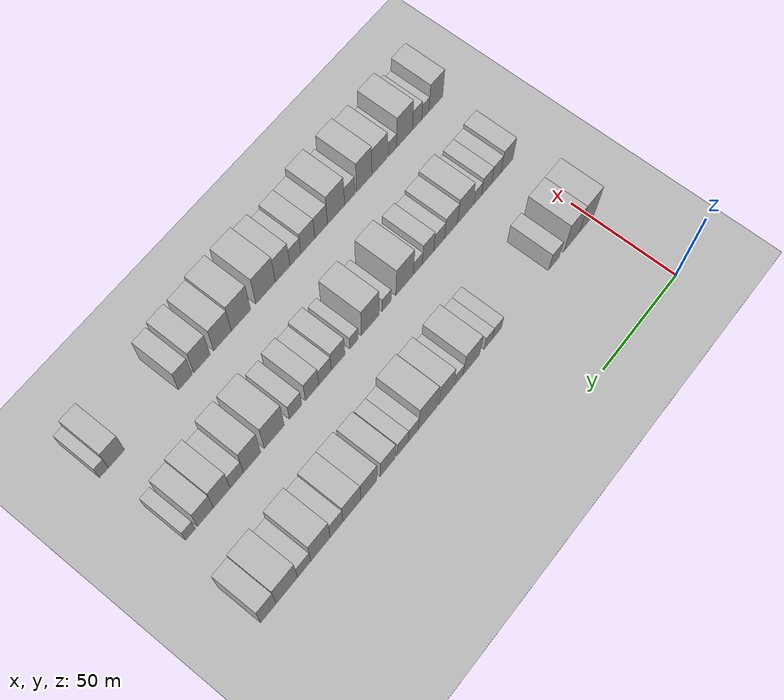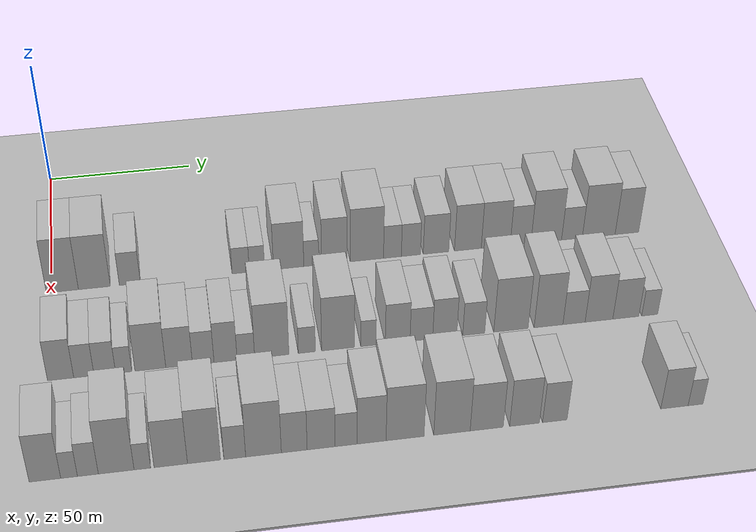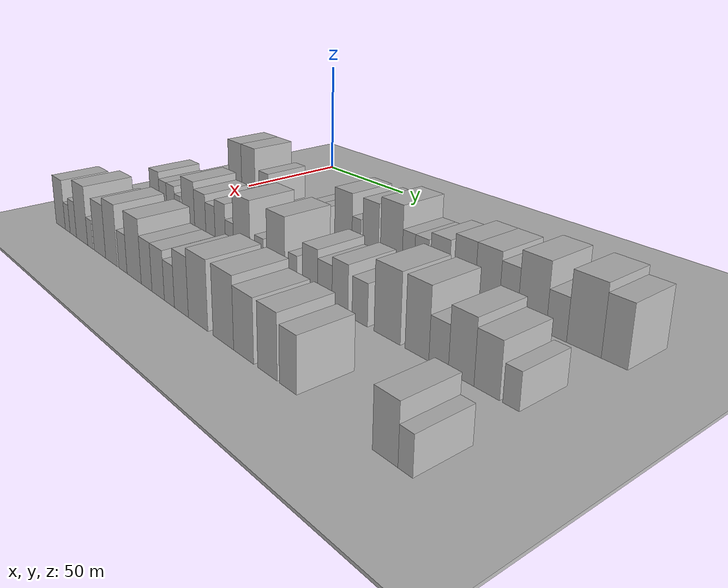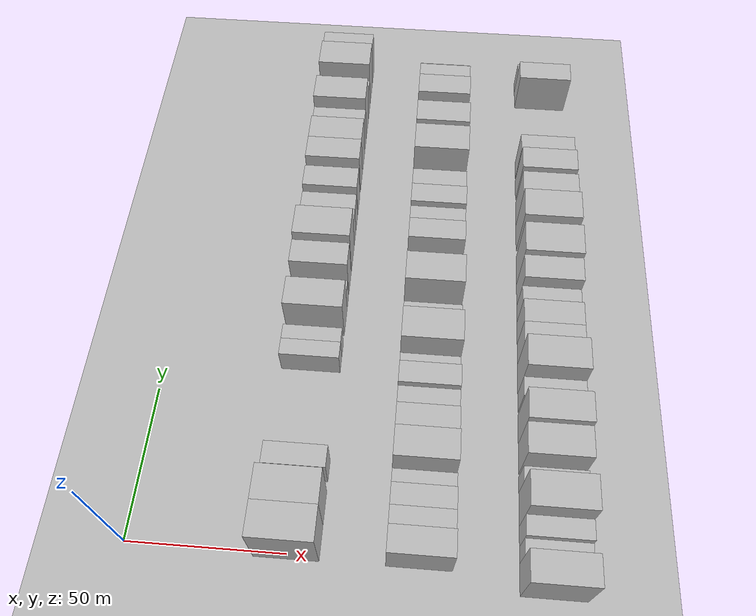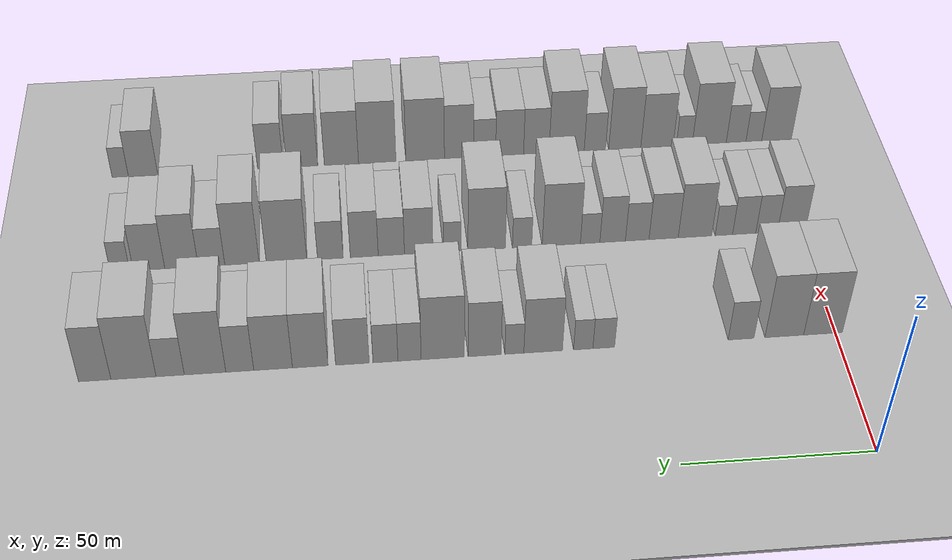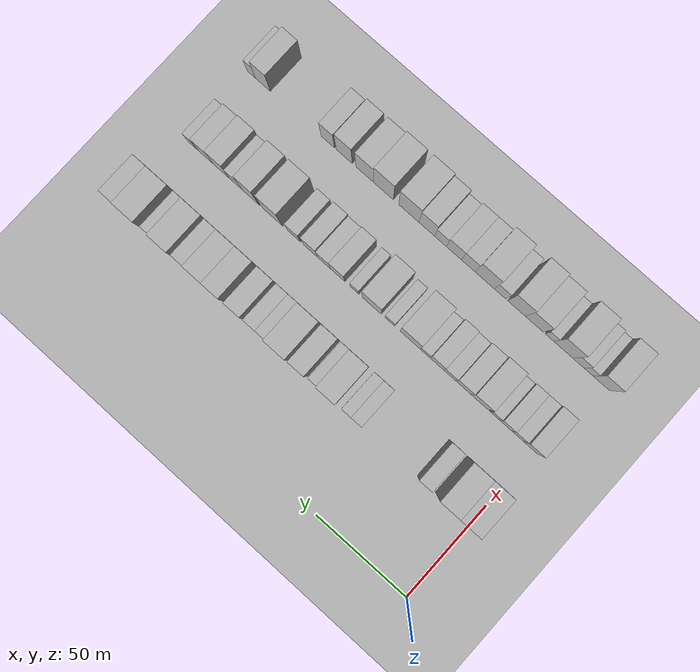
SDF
<sdf version="1.6">
 <world name="default">
  <include><name>ground_plane_1</name><uri>model://HANNAS_ground_plane</uri></include>
  <include>
   <name>ground_plane_2</name>
   <uri>model://HANNAS_ground_plane</uri>
   <pose>100 0 0  0 0 0</pose>
  </include>
  <model name="building_43">
   <static>1</static>
   <pose>50.0000 3.6945 0 0.000000 0.000000 0.000000</pose>
   <link name="link">
    <pose>0 0 12.00 0 0 0</pose>
    <collision name="collision"><geometry><box><size>20.0000 10.6386 24.0000</size></box></geometry></collision>
    <visual name="visual">
     <cast_shadows>0</cast_shadows>
     <geometry><box><size>20.0000 10.6386 24.0000</size></box></geometry>
     <material>
      <script>
       <uri>model://HANNAS_wall/materials/scripts</uri>
       <uri>model://HANNAS_wall/materials/textures</uri>
       <name>vrc/HANNAS_wall</name>
      </script>
     </material>
    </visual>
   </link>
  </model>
  <model name="building_44">
   <static>1</static>
   <pose>50.0000 14.3136 0 0.000000 0.000000 0.000000</pose>
   <link name="link">
    <pose>0 0 12.00 0 0 0</pose>
    <collision name="collision"><geometry><box><size>20.0000 10.5998 24.0000</size></box></geometry></collision>
    <visual name="visual">
     <cast_shadows>0</cast_shadows>
     <geometry><box><size>20.0000 10.5998 24.0000</size></box></geometry>
     <material>
      <script>
       <uri>model://HANNAS_wall/materials/scripts</uri>
       <uri>model://HANNAS_wall/materials/textures</uri>
       <name>vrc/HANNAS_wall</name>
      </script>
     </material>
    </visual>
   </link>
  </model>
  <model name="building_45">
   <static>1</static>
   <pose>50.0000 26.1371 0 0.000000 0.000000 0.000000</pose>
   <link name="link">
    <pose>0 0 7.50 0 0 0</pose>
    <collision name="collision"><geometry><box><size>20.0000 7.0471 15.0000</size></box></geometry></collision>
    <visual name="visual">
     <cast_shadows>0</cast_shadows>
     <geometry><box><size>20.0000 7.0471 15.0000</size></box></geometry>
     <material>
      <script>
       <uri>model://HANNAS_wall/materials/scripts</uri>
       <uri>model://HANNAS_wall/materials/textures</uri>
       <name>vrc/HANNAS_wall</name>
      </script>
     </material>
    </visual>
   </link>
  </model>
  <model name="building_46">
   <static>1</static>
   <pose>50.0000 63.4230 0 0.000000 0.000000 0.000000</pose>
   <link name="link">
    <pose>0 0 6.00 0 0 0</pose>
    <collision name="collision"><geometry><box><size>20.0000 5.8416 12.0000</size></box></geometry></collision>
    <visual name="visual">
     <cast_shadows>0</cast_shadows>
     <geometry><box><size>20.0000 5.8416 12.0000</size></box></geometry>
     <material>
      <script>
       <uri>model://HANNAS_wall/materials/scripts</uri>
       <uri>model://HANNAS_wall/materials/textures</uri>
       <name>vrc/HANNAS_wall</name>
      </script>
     </material>
    </visual>
   </link>
  </model>
  <model name="building_47">
   <static>1</static>
   <pose>50.0000 68.9528 0 0.000000 0.000000 0.000000</pose>
   <link name="link">
    <pose>0 0 6.00 0 0 0</pose>
    <collision name="collision"><geometry><box><size>20.0000 5.2181 12.0000</size></box></geometry></collision>
    <visual name="visual">
     <cast_shadows>0</cast_shadows>
     <geometry><box><size>20.0000 5.2181 12.0000</size></box></geometry>
     <material>
      <script>
       <uri>model://HANNAS_wall/materials/scripts</uri>
       <uri>model://HANNAS_wall/materials/textures</uri>
       <name>vrc/HANNAS_wall</name>
      </script>
     </material>
    </visual>
   </link>
  </model>
  <model name="building_48">
   <static>1</static>
   <pose>50.0000 79.7441 0 0.000000 0.000000 0.000000</pose>
   <link name="link">
    <pose>0 0 10.50 0 0 0</pose>
    <collision name="collision"><geometry><box><size>20.0000 10.3643 21.0000</size></box></geometry></collision>
    <visual name="visual">
     <cast_shadows>0</cast_shadows>
     <geometry><box><size>20.0000 10.3643 21.0000</size></box></geometry>
     <material>
      <script>
       <uri>model://HANNAS_wall/materials/scripts</uri>
       <uri>model://HANNAS_wall/materials/textures</uri>
       <name>vrc/HANNAS_wall</name>
      </script>
     </material>
    </visual>
   </link>
  </model>
  <model name="building_49">
   <static>1</static>
   <pose>50.0000 87.4712 0 0.000000 0.000000 0.000000</pose>
   <link name="link">
    <pose>0 0 6.00 0 0 0</pose>
    <collision name="collision"><geometry><box><size>20.0000 5.0900 12.0000</size></box></geometry></collision>
    <visual name="visual">
     <cast_shadows>0</cast_shadows>
     <geometry><box><size>20.0000 5.0900 12.0000</size></box></geometry>
     <material>
      <script>
       <uri>model://HANNAS_wall/materials/scripts</uri>
       <uri>model://HANNAS_wall/materials/textures</uri>
       <name>vrc/HANNAS_wall</name>
      </script>
     </material>
    </visual>
   </link>
  </model>
  <model name="building_50">
   <static>1</static>
   <pose>50.0000 95.4310 0 0.000000 0.000000 0.000000</pose>
   <link name="link">
    <pose>0 0 10.50 0 0 0</pose>
    <collision name="collision"><geometry><box><size>20.0000 8.8296 21.0000</size></box></geometry></collision>
    <visual name="visual">
     <cast_shadows>0</cast_shadows>
     <geometry><box><size>20.0000 8.8296 21.0000</size></box></geometry>
     <material>
      <script>
       <uri>model://HANNAS_wall/materials/scripts</uri>
       <uri>model://HANNAS_wall/materials/textures</uri>
       <name>vrc/HANNAS_wall</name>
      </script>
     </material>
    </visual>
   </link>
  </model>
  <model name="building_51">
   <static>1</static>
   <pose>50.0000 106.6038 0 0.000000 0.000000 0.000000</pose>
   <link name="link">
    <pose>0 0 12.00 0 0 0</pose>
    <collision name="collision"><geometry><box><size>20.0000 11.5159 24.0000</size></box></geometry></collision>
    <visual name="visual">
     <cast_shadows>0</cast_shadows>
     <geometry><box><size>20.0000 11.5159 24.0000</size></box></geometry>
     <material>
      <script>
       <uri>model://HANNAS_wall/materials/scripts</uri>
       <uri>model://HANNAS_wall/materials/textures</uri>
       <name>vrc/HANNAS_wall</name>
      </script>
     </material>
    </visual>
   </link>
  </model>
  <model name="building_52">
   <static>1</static>
   <pose>50.0000 115.4481 0 0.000000 0.000000 0.000000</pose>
   <link name="link">
    <pose>0 0 7.50 0 0 0</pose>
    <collision name="collision"><geometry><box><size>20.0000 6.1727 15.0000</size></box></geometry></collision>
    <visual name="visual">
     <cast_shadows>0</cast_shadows>
     <geometry><box><size>20.0000 6.1727 15.0000</size></box></geometry>
     <material>
      <script>
       <uri>model://HANNAS_wall/materials/scripts</uri>
       <uri>model://HANNAS_wall/materials/textures</uri>
       <name>vrc/HANNAS_wall</name>
      </script>
     </material>
    </visual>
   </link>
  </model>
  <model name="building_53">
   <static>1</static>
   <pose>50.0000 121.8401 0 0.000000 0.000000 0.000000</pose>
   <link name="link">
    <pose>0 0 7.50 0 0 0</pose>
    <collision name="collision"><geometry><box><size>20.0000 6.6113 15.0000</size></box></geometry></collision>
    <visual name="visual">
     <cast_shadows>0</cast_shadows>
     <geometry><box><size>20.0000 6.6113 15.0000</size></box></geometry>
     <material>
      <script>
       <uri>model://HANNAS_wall/materials/scripts</uri>
       <uri>model://HANNAS_wall/materials/textures</uri>
       <name>vrc/HANNAS_wall</name>
      </script>
     </material>
    </visual>
   </link>
  </model>
  <model name="building_54">
   <static>1</static>
   <pose>50.0000 130.5948 0 0.000000 0.000000 0.000000</pose>
   <link name="link">
    <pose>0 0 9.00 0 0 0</pose>
    <collision name="collision"><geometry><box><size>20.0000 8.8981 18.0000</size></box></geometry></collision>
    <visual name="visual">
     <cast_shadows>0</cast_shadows>
     <geometry><box><size>20.0000 8.8981 18.0000</size></box></geometry>
     <material>
      <script>
       <uri>model://HANNAS_wall/materials/scripts</uri>
       <uri>model://HANNAS_wall/materials/textures</uri>
       <name>vrc/HANNAS_wall</name>
      </script>
     </material>
    </visual>
   </link>
  </model>
  <model name="building_55">
   <static>1</static>
   <pose>50.0000 141.7372 0 0.000000 0.000000 0.000000</pose>
   <link name="link">
    <pose>0 0 10.50 0 0 0</pose>
    <collision name="collision"><geometry><box><size>20.0000 9.3868 21.0000</size></box></geometry></collision>
    <visual name="visual">
     <cast_shadows>0</cast_shadows>
     <geometry><box><size>20.0000 9.3868 21.0000</size></box></geometry>
     <material>
      <script>
       <uri>model://HANNAS_wall/materials/scripts</uri>
       <uri>model://HANNAS_wall/materials/textures</uri>
       <name>vrc/HANNAS_wall</name>
      </script>
     </material>
    </visual>
   </link>
  </model>
  <model name="building_56">
   <static>1</static>
   <pose>50.0000 151.5212 0 0.000000 0.000000 0.000000</pose>
   <link name="link">
    <pose>0 0 10.50 0 0 0</pose>
    <collision name="collision"><geometry><box><size>20.0000 10.1810 21.0000</size></box></geometry></collision>
    <visual name="visual">
     <cast_shadows>0</cast_shadows>
     <geometry><box><size>20.0000 10.1810 21.0000</size></box></geometry>
     <material>
      <script>
       <uri>model://HANNAS_wall/materials/scripts</uri>
       <uri>model://HANNAS_wall/materials/textures</uri>
       <name>vrc/HANNAS_wall</name>
      </script>
     </material>
    </visual>
   </link>
  </model>
  <model name="building_57">
   <static>1</static>
   <pose>50.0000 160.2827 0 0.000000 0.000000 0.000000</pose>
   <link name="link">
    <pose>0 0 9.00 0 0 0</pose>
    <collision name="collision"><geometry><box><size>20.0000 7.3421 18.0000</size></box></geometry></collision>
    <visual name="visual">
     <cast_shadows>0</cast_shadows>
     <geometry><box><size>20.0000 7.3421 18.0000</size></box></geometry>
     <material>
      <script>
       <uri>model://HANNAS_wall/materials/scripts</uri>
       <uri>model://HANNAS_wall/materials/textures</uri>
       <name>vrc/HANNAS_wall</name>
      </script>
     </material>
    </visual>
   </link>
  </model>
  <model name="building_58">
   <static>1</static>
   <pose>50.0000 169.3815 0 0.000000 0.000000 0.000000</pose>
   <link name="link">
    <pose>0 0 12.00 0 0 0</pose>
    <collision name="collision"><geometry><box><size>20.0000 10.8555 24.0000</size></box></geometry></collision>
    <visual name="visual">
     <cast_shadows>0</cast_shadows>
     <geometry><box><size>20.0000 10.8555 24.0000</size></box></geometry>
     <material>
      <script>
       <uri>model://HANNAS_wall/materials/scripts</uri>
       <uri>model://HANNAS_wall/materials/textures</uri>
       <name>vrc/HANNAS_wall</name>
      </script>
     </material>
    </visual>
   </link>
  </model>
  <model name="building_59">
   <static>1</static>
   <pose>50.0000 178.4970 0 0.000000 0.000000 0.000000</pose>
   <link name="link">
    <pose>0 0 7.50 0 0 0</pose>
    <collision name="collision"><geometry><box><size>20.0000 7.3755 15.0000</size></box></geometry></collision>
    <visual name="visual">
     <cast_shadows>0</cast_shadows>
     <geometry><box><size>20.0000 7.3755 15.0000</size></box></geometry>
     <material>
      <script>
       <uri>model://HANNAS_wall/materials/scripts</uri>
       <uri>model://HANNAS_wall/materials/textures</uri>
       <name>vrc/HANNAS_wall</name>
      </script>
     </material>
    </visual>
   </link>
  </model>
  <model name="building_60">
   <static>1</static>
   <pose>50.0000 188.0534 0 0.000000 0.000000 0.000000</pose>
   <link name="link">
    <pose>0 0 12.00 0 0 0</pose>
    <collision name="collision"><geometry><box><size>20.0000 11.7372 24.0000</size></box></geometry></collision>
    <visual name="visual">
     <cast_shadows>0</cast_shadows>
     <geometry><box><size>20.0000 11.7372 24.0000</size></box></geometry>
     <material>
      <script>
       <uri>model://HANNAS_wall/materials/scripts</uri>
       <uri>model://HANNAS_wall/materials/textures</uri>
       <name>vrc/HANNAS_wall</name>
      </script>
     </material>
    </visual>
   </link>
  </model>
  <model name="building_61">
   <static>1</static>
   <pose>50.0000 198.1415 0 0.000000 0.000000 0.000000</pose>
   <link name="link">
    <pose>0 0 10.50 0 0 0</pose>
    <collision name="collision"><geometry><box><size>20.0000 8.4388 21.0000</size></box></geometry></collision>
    <visual name="visual">
     <cast_shadows>0</cast_shadows>
     <geometry><box><size>20.0000 8.4388 21.0000</size></box></geometry>
     <material>
      <script>
       <uri>model://HANNAS_wall/materials/scripts</uri>
       <uri>model://HANNAS_wall/materials/textures</uri>
       <name>vrc/HANNAS_wall</name>
      </script>
     </material>
    </visual>
   </link>
  </model>
  <model name="building_121">
   <static>1</static>
   <pose>90.0000 2.7217 0 0.000000 0.000000 0.000000</pose>
   <link name="link">
    <pose>0 0 9.00 0 0 0</pose>
    <collision name="collision"><geometry><box><size>20.0000 8.1767 18.0000</size></box></geometry></collision>
    <visual name="visual">
     <cast_shadows>0</cast_shadows>
     <geometry><box><size>20.0000 8.1767 18.0000</size></box></geometry>
     <material>
      <script>
       <uri>model://HANNAS_wall/materials/scripts</uri>
       <uri>model://HANNAS_wall/materials/textures</uri>
       <name>vrc/HANNAS_wall</name>
      </script>
     </material>
    </visual>
   </link>
  </model>
  <model name="building_122">
   <static>1</static>
   <pose>90.0000 9.9872 0 0.000000 0.000000 0.000000</pose>
   <link name="link">
    <pose>0 0 7.50 0 0 0</pose>
    <collision name="collision"><geometry><box><size>20.0000 6.3544 15.0000</size></box></geometry></collision>
    <visual name="visual">
     <cast_shadows>0</cast_shadows>
     <geometry><box><size>20.0000 6.3544 15.0000</size></box></geometry>
     <material>
      <script>
       <uri>model://HANNAS_wall/materials/scripts</uri>
       <uri>model://HANNAS_wall/materials/textures</uri>
       <name>vrc/HANNAS_wall</name>
      </script>
     </material>
    </visual>
   </link>
  </model>
  <model name="building_123">
   <static>1</static>
   <pose>90.0000 16.5528 0 0.000000 0.000000 0.000000</pose>
   <link name="link">
    <pose>0 0 7.50 0 0 0</pose>
    <collision name="collision"><geometry><box><size>20.0000 6.7767 15.0000</size></box></geometry></collision>
    <visual name="visual">
     <cast_shadows>0</cast_shadows>
     <geometry><box><size>20.0000 6.7767 15.0000</size></box></geometry>
     <material>
      <script>
       <uri>model://HANNAS_wall/materials/scripts</uri>
       <uri>model://HANNAS_wall/materials/textures</uri>
       <name>vrc/HANNAS_wall</name>
      </script>
     </material>
    </visual>
   </link>
  </model>
  <model name="building_124">
   <static>1</static>
   <pose>90.0000 22.4808 0 0.000000 0.000000 0.000000</pose>
   <link name="link">
    <pose>0 0 6.00 0 0 0</pose>
    <collision name="collision"><geometry><box><size>20.0000 5.0795 12.0000</size></box></geometry></collision>
    <visual name="visual">
     <cast_shadows>0</cast_shadows>
     <geometry><box><size>20.0000 5.0795 12.0000</size></box></geometry>
     <material>
      <script>
       <uri>model://HANNAS_wall/materials/scripts</uri>
       <uri>model://HANNAS_wall/materials/textures</uri>
       <name>vrc/HANNAS_wall</name>
      </script>
     </material>
    </visual>
   </link>
  </model>
  <model name="building_125">
   <static>1</static>
   <pose>90.0000 30.8896 0 0.000000 0.000000 0.000000</pose>
   <link name="link">
    <pose>0 0 10.50 0 0 0</pose>
    <collision name="collision"><geometry><box><size>20.0000 9.7381 21.0000</size></box></geometry></collision>
    <visual name="visual">
     <cast_shadows>0</cast_shadows>
     <geometry><box><size>20.0000 9.7381 21.0000</size></box></geometry>
     <material>
      <script>
       <uri>model://HANNAS_wall/materials/scripts</uri>
       <uri>model://HANNAS_wall/materials/textures</uri>
       <name>vrc/HANNAS_wall</name>
      </script>
     </material>
    </visual>
   </link>
  </model>
  <model name="building_126">
   <static>1</static>
   <pose>90.0000 39.9982 0 0.000000 0.000000 0.000000</pose>
   <link name="link">
    <pose>0 0 9.00 0 0 0</pose>
    <collision name="collision"><geometry><box><size>20.0000 8.4792 18.0000</size></box></geometry></collision>
    <visual name="visual">
     <cast_shadows>0</cast_shadows>
     <geometry><box><size>20.0000 8.4792 18.0000</size></box></geometry>
     <material>
      <script>
       <uri>model://HANNAS_wall/materials/scripts</uri>
       <uri>model://HANNAS_wall/materials/textures</uri>
       <name>vrc/HANNAS_wall</name>
      </script>
     </material>
    </visual>
   </link>
  </model>
  <model name="building_127">
   <static>1</static>
   <pose>90.0000 47.6532 0 0.000000 0.000000 0.000000</pose>
   <link name="link">
    <pose>0 0 7.50 0 0 0</pose>
    <collision name="collision"><geometry><box><size>20.0000 6.8307 15.0000</size></box></geometry></collision>
    <visual name="visual">
     <cast_shadows>0</cast_shadows>
     <geometry><box><size>20.0000 6.8307 15.0000</size></box></geometry>
     <material>
      <script>
       <uri>model://HANNAS_wall/materials/scripts</uri>
       <uri>model://HANNAS_wall/materials/textures</uri>
       <name>vrc/HANNAS_wall</name>
      </script>
     </material>
    </visual>
   </link>
  </model>
  <model name="building_128">
   <static>1</static>
   <pose>90.0000 54.7514 0 0.000000 0.000000 0.000000</pose>
   <link name="link">
    <pose>0 0 9.00 0 0 0</pose>
    <collision name="collision"><geometry><box><size>20.0000 7.3659 18.0000</size></box></geometry></collision>
    <visual name="visual">
     <cast_shadows>0</cast_shadows>
     <geometry><box><size>20.0000 7.3659 18.0000</size></box></geometry>
     <material>
      <script>
       <uri>model://HANNAS_wall/materials/scripts</uri>
       <uri>model://HANNAS_wall/materials/textures</uri>
       <name>vrc/HANNAS_wall</name>
      </script>
     </material>
    </visual>
   </link>
  </model>
  <model name="building_129">
   <static>1</static>
   <pose>90.0000 61.2409 0 0.000000 0.000000 0.000000</pose>
   <link name="link">
    <pose>0 0 6.00 0 0 0</pose>
    <collision name="collision"><geometry><box><size>20.0000 5.6130 12.0000</size></box></geometry></collision>
    <visual name="visual">
     <cast_shadows>0</cast_shadows>
     <geometry><box><size>20.0000 5.6130 12.0000</size></box></geometry>
     <material>
      <script>
       <uri>model://HANNAS_wall/materials/scripts</uri>
       <uri>model://HANNAS_wall/materials/textures</uri>
       <name>vrc/HANNAS_wall</name>
      </script>
     </material>
    </visual>
   </link>
  </model>
  <model name="building_130">
   <static>1</static>
   <pose>90.0000 69.5506 0 0.000000 0.000000 0.000000</pose>
   <link name="link">
    <pose>0 0 12.00 0 0 0</pose>
    <collision name="collision"><geometry><box><size>20.0000 11.0065 24.0000</size></box></geometry></collision>
    <visual name="visual">
     <cast_shadows>0</cast_shadows>
     <geometry><box><size>20.0000 11.0065 24.0000</size></box></geometry>
     <material>
      <script>
       <uri>model://HANNAS_wall/materials/scripts</uri>
       <uri>model://HANNAS_wall/materials/textures</uri>
       <name>vrc/HANNAS_wall</name>
      </script>
     </material>
    </visual>
   </link>
  </model>
  <model name="building_131">
   <static>1</static>
   <pose>90.0000 80.8199 0 0.000000 0.000000 0.000000</pose>
   <link name="link">
    <pose>0 0 6.00 0 0 0</pose>
    <collision name="collision"><geometry><box><size>20.0000 5.5319 12.0000</size></box></geometry></collision>
    <visual name="visual">
     <cast_shadows>0</cast_shadows>
     <geometry><box><size>20.0000 5.5319 12.0000</size></box></geometry>
     <material>
      <script>
       <uri>model://HANNAS_wall/materials/scripts</uri>
       <uri>model://HANNAS_wall/materials/textures</uri>
       <name>vrc/HANNAS_wall</name>
      </script>
     </material>
    </visual>
   </link>
  </model>
  <model name="building_132">
   <static>1</static>
   <pose>90.0000 90.9459 0 0.000000 0.000000 0.000000</pose>
   <link name="link">
    <pose>0 0 12.00 0 0 0</pose>
    <collision name="collision"><geometry><box><size>20.0000 10.7201 24.0000</size></box></geometry></collision>
    <visual name="visual">
     <cast_shadows>0</cast_shadows>
     <geometry><box><size>20.0000 10.7201 24.0000</size></box></geometry>
     <material>
      <script>
       <uri>model://HANNAS_wall/materials/scripts</uri>
       <uri>model://HANNAS_wall/materials/textures</uri>
       <name>vrc/HANNAS_wall</name>
      </script>
     </material>
    </visual>
   </link>
  </model>
  <model name="building_133">
   <static>1</static>
   <pose>90.0000 100.7903 0 0.000000 0.000000 0.000000</pose>
   <link name="link">
    <pose>0 0 6.00 0 0 0</pose>
    <collision name="collision"><geometry><box><size>20.0000 4.9687 12.0000</size></box></geometry></collision>
    <visual name="visual">
     <cast_shadows>0</cast_shadows>
     <geometry><box><size>20.0000 4.9687 12.0000</size></box></geometry>
     <material>
      <script>
       <uri>model://HANNAS_wall/materials/scripts</uri>
       <uri>model://HANNAS_wall/materials/textures</uri>
       <name>vrc/HANNAS_wall</name>
      </script>
     </material>
    </visual>
   </link>
  </model>
  <model name="building_134">
   <static>1</static>
   <pose>90.0000 110.3267 0 0.000000 0.000000 0.000000</pose>
   <link name="link">
    <pose>0 0 9.00 0 0 0</pose>
    <collision name="collision"><geometry><box><size>20.0000 8.1042 18.0000</size></box></geometry></collision>
    <visual name="visual">
     <cast_shadows>0</cast_shadows>
     <geometry><box><size>20.0000 8.1042 18.0000</size></box></geometry>
     <material>
      <script>
       <uri>model://HANNAS_wall/materials/scripts</uri>
       <uri>model://HANNAS_wall/materials/textures</uri>
       <name>vrc/HANNAS_wall</name>
      </script>
     </material>
    </visual>
   </link>
  </model>
  <model name="building_135">
   <static>1</static>
   <pose>90.0000 118.0983 0 0.000000 0.000000 0.000000</pose>
   <link name="link">
    <pose>0 0 7.50 0 0 0</pose>
    <collision name="collision"><geometry><box><size>20.0000 7.4389 15.0000</size></box></geometry></collision>
    <visual name="visual">
     <cast_shadows>0</cast_shadows>
     <geometry><box><size>20.0000 7.4389 15.0000</size></box></geometry>
     <material>
      <script>
       <uri>model://HANNAS_wall/materials/scripts</uri>
       <uri>model://HANNAS_wall/materials/textures</uri>
       <name>vrc/HANNAS_wall</name>
      </script>
     </material>
    </visual>
   </link>
  </model>
  <model name="building_136">
   <static>1</static>
   <pose>90.0000 125.7730 0 0.000000 0.000000 0.000000</pose>
   <link name="link">
    <pose>0 0 9.00 0 0 0</pose>
    <collision name="collision"><geometry><box><size>20.0000 7.9103 18.0000</size></box></geometry></collision>
    <visual name="visual">
     <cast_shadows>0</cast_shadows>
     <geometry><box><size>20.0000 7.9103 18.0000</size></box></geometry>
     <material>
      <script>
       <uri>model://HANNAS_wall/materials/scripts</uri>
       <uri>model://HANNAS_wall/materials/textures</uri>
       <name>vrc/HANNAS_wall</name>
      </script>
     </material>
    </visual>
   </link>
  </model>
  <model name="building_137">
   <static>1</static>
   <pose>90.0000 135.3579 0 0.000000 0.000000 0.000000</pose>
   <link name="link">
    <pose>0 0 7.50 0 0 0</pose>
    <collision name="collision"><geometry><box><size>20.0000 7.2595 15.0000</size></box></geometry></collision>
    <visual name="visual">
     <cast_shadows>0</cast_shadows>
     <geometry><box><size>20.0000 7.2595 15.0000</size></box></geometry>
     <material>
      <script>
       <uri>model://HANNAS_wall/materials/scripts</uri>
       <uri>model://HANNAS_wall/materials/textures</uri>
       <name>vrc/HANNAS_wall</name>
      </script>
     </material>
    </visual>
   </link>
  </model>
  <model name="building_138">
   <static>1</static>
   <pose>90.0000 147.7021 0 0.000000 0.000000 0.000000</pose>
   <link name="link">
    <pose>0 0 12.00 0 0 0</pose>
    <collision name="collision"><geometry><box><size>20.0000 11.4290 24.0000</size></box></geometry></collision>
    <visual name="visual">
     <cast_shadows>0</cast_shadows>
     <geometry><box><size>20.0000 11.4290 24.0000</size></box></geometry>
     <material>
      <script>
       <uri>model://HANNAS_wall/materials/scripts</uri>
       <uri>model://HANNAS_wall/materials/textures</uri>
       <name>vrc/HANNAS_wall</name>
      </script>
     </material>
    </visual>
   </link>
  </model>
  <model name="building_139">
   <static>1</static>
   <pose>90.0000 160.2400 0 0.000000 0.000000 0.000000</pose>
   <link name="link">
    <pose>0 0 12.00 0 0 0</pose>
    <collision name="collision"><geometry><box><size>20.0000 9.6467 24.0000</size></box></geometry></collision>
    <visual name="visual">
     <cast_shadows>0</cast_shadows>
     <geometry><box><size>20.0000 9.6467 24.0000</size></box></geometry>
     <material>
      <script>
       <uri>model://HANNAS_wall/materials/scripts</uri>
       <uri>model://HANNAS_wall/materials/textures</uri>
       <name>vrc/HANNAS_wall</name>
      </script>
     </material>
    </visual>
   </link>
  </model>
  <model name="building_140">
   <static>1</static>
   <pose>90.0000 168.7885 0 0.000000 0.000000 0.000000</pose>
   <link name="link">
    <pose>0 0 7.50 0 0 0</pose>
    <collision name="collision"><geometry><box><size>20.0000 7.4503 15.0000</size></box></geometry></collision>
    <visual name="visual">
     <cast_shadows>0</cast_shadows>
     <geometry><box><size>20.0000 7.4503 15.0000</size></box></geometry>
     <material>
      <script>
       <uri>model://HANNAS_wall/materials/scripts</uri>
       <uri>model://HANNAS_wall/materials/textures</uri>
       <name>vrc/HANNAS_wall</name>
      </script>
     </material>
    </visual>
   </link>
  </model>
  <model name="building_141">
   <static>1</static>
   <pose>90.0000 177.1736 0 0.000000 0.000000 0.000000</pose>
   <link name="link">
    <pose>0 0 10.50 0 0 0</pose>
    <collision name="collision"><geometry><box><size>20.0000 9.3198 21.0000</size></box></geometry></collision>
    <visual name="visual">
     <cast_shadows>0</cast_shadows>
     <geometry><box><size>20.0000 9.3198 21.0000</size></box></geometry>
     <material>
      <script>
       <uri>model://HANNAS_wall/materials/scripts</uri>
       <uri>model://HANNAS_wall/materials/textures</uri>
       <name>vrc/HANNAS_wall</name>
      </script>
     </material>
    </visual>
   </link>
  </model>
  <model name="building_142">
   <static>1</static>
   <pose>90.0000 186.2280 0 0.000000 0.000000 0.000000</pose>
   <link name="link">
    <pose>0 0 9.00 0 0 0</pose>
    <collision name="collision"><geometry><box><size>20.0000 8.7892 18.0000</size></box></geometry></collision>
    <visual name="visual">
     <cast_shadows>0</cast_shadows>
     <geometry><box><size>20.0000 8.7892 18.0000</size></box></geometry>
     <material>
      <script>
       <uri>model://HANNAS_wall/materials/scripts</uri>
       <uri>model://HANNAS_wall/materials/textures</uri>
       <name>vrc/HANNAS_wall</name>
      </script>
     </material>
    </visual>
   </link>
  </model>
  <model name="building_143">
   <static>1</static>
   <pose>90.0000 194.3245 0 0.000000 0.000000 0.000000</pose>
   <link name="link">
    <pose>0 0 6.00 0 0 0</pose>
    <collision name="collision"><geometry><box><size>20.0000 5.4039 12.0000</size></box></geometry></collision>
    <visual name="visual">
     <cast_shadows>0</cast_shadows>
     <geometry><box><size>20.0000 5.4039 12.0000</size></box></geometry>
     <material>
      <script>
       <uri>model://HANNAS_wall/materials/scripts</uri>
       <uri>model://HANNAS_wall/materials/textures</uri>
       <name>vrc/HANNAS_wall</name>
      </script>
     </material>
    </visual>
   </link>
  </model>
  <model name="building_211">
   <static>1</static>
   <pose>130.0000 -2.2781 0 0.000000 0.000000 0.000000</pose>
   <link name="link">
    <pose>0 0 10.50 0 0 0</pose>
    <collision name="collision"><geometry><box><size>20.0000 9.2517 21.0000</size></box></geometry></collision>
    <visual name="visual">
     <cast_shadows>0</cast_shadows>
     <geometry><box><size>20.0000 9.2517 21.0000</size></box></geometry>
     <material>
      <script>
       <uri>model://HANNAS_wall/materials/scripts</uri>
       <uri>model://HANNAS_wall/materials/textures</uri>
       <name>vrc/HANNAS_wall</name>
      </script>
     </material>
    </visual>
   </link>
  </model>
  <model name="building_212">
   <static>1</static>
   <pose>130.0000 4.7942 0 0.000000 0.000000 0.000000</pose>
   <link name="link">
    <pose>0 0 6.00 0 0 0</pose>
    <collision name="collision"><geometry><box><size>20.0000 4.8929 12.0000</size></box></geometry></collision>
    <visual name="visual">
     <cast_shadows>0</cast_shadows>
     <geometry><box><size>20.0000 4.8929 12.0000</size></box></geometry>
     <material>
      <script>
       <uri>model://HANNAS_wall/materials/scripts</uri>
       <uri>model://HANNAS_wall/materials/textures</uri>
       <name>vrc/HANNAS_wall</name>
      </script>
     </material>
    </visual>
   </link>
  </model>
  <model name="building_213">
   <static>1</static>
   <pose>130.0000 10.3087 0 0.000000 0.000000 0.000000</pose>
   <link name="link">
    <pose>0 0 7.50 0 0 0</pose>
    <collision name="collision"><geometry><box><size>20.0000 6.1362 15.0000</size></box></geometry></collision>
    <visual name="visual">
     <cast_shadows>0</cast_shadows>
     <geometry><box><size>20.0000 6.1362 15.0000</size></box></geometry>
     <material>
      <script>
       <uri>model://HANNAS_wall/materials/scripts</uri>
       <uri>model://HANNAS_wall/materials/textures</uri>
       <name>vrc/HANNAS_wall</name>
      </script>
     </material>
    </visual>
   </link>
  </model>
  <model name="building_214">
   <static>1</static>
   <pose>130.0000 18.6574 0 0.000000 0.000000 0.000000</pose>
   <link name="link">
    <pose>0 0 12.00 0 0 0</pose>
    <collision name="collision"><geometry><box><size>20.0000 10.5612 24.0000</size></box></geometry></collision>
    <visual name="visual">
     <cast_shadows>0</cast_shadows>
     <geometry><box><size>20.0000 10.5612 24.0000</size></box></geometry>
     <material>
      <script>
       <uri>model://HANNAS_wall/materials/scripts</uri>
       <uri>model://HANNAS_wall/materials/textures</uri>
       <name>vrc/HANNAS_wall</name>
      </script>
     </material>
    </visual>
   </link>
  </model>
  <model name="building_215">
   <static>1</static>
   <pose>130.0000 26.3901 0 0.000000 0.000000 0.000000</pose>
   <link name="link">
    <pose>0 0 6.00 0 0 0</pose>
    <collision name="collision"><geometry><box><size>20.0000 4.9042 12.0000</size></box></geometry></collision>
    <visual name="visual">
     <cast_shadows>0</cast_shadows>
     <geometry><box><size>20.0000 4.9042 12.0000</size></box></geometry>
     <material>
      <script>
       <uri>model://HANNAS_wall/materials/scripts</uri>
       <uri>model://HANNAS_wall/materials/textures</uri>
       <name>vrc/HANNAS_wall</name>
      </script>
     </material>
    </visual>
   </link>
  </model>
  <model name="building_216">
   <static>1</static>
   <pose>130.0000 34.8248 0 0.000000 0.000000 0.000000</pose>
   <link name="link">
    <pose>0 0 10.50 0 0 0</pose>
    <collision name="collision"><geometry><box><size>20.0000 9.9653 21.0000</size></box></geometry></collision>
    <visual name="visual">
     <cast_shadows>0</cast_shadows>
     <geometry><box><size>20.0000 9.9653 21.0000</size></box></geometry>
     <material>
      <script>
       <uri>model://HANNAS_wall/materials/scripts</uri>
       <uri>model://HANNAS_wall/materials/textures</uri>
       <name>vrc/HANNAS_wall</name>
      </script>
     </material>
    </visual>
   </link>
  </model>
  <model name="building_217">
   <static>1</static>
   <pose>130.0000 44.7439 0 0.000000 0.000000 0.000000</pose>
   <link name="link">
    <pose>0 0 12.00 0 0 0</pose>
    <collision name="collision"><geometry><box><size>20.0000 9.8729 24.0000</size></box></geometry></collision>
    <visual name="visual">
     <cast_shadows>0</cast_shadows>
     <geometry><box><size>20.0000 9.8729 24.0000</size></box></geometry>
     <material>
      <script>
       <uri>model://HANNAS_wall/materials/scripts</uri>
       <uri>model://HANNAS_wall/materials/textures</uri>
       <name>vrc/HANNAS_wall</name>
      </script>
     </material>
    </visual>
   </link>
  </model>
  <model name="building_218">
   <static>1</static>
   <pose>130.0000 53.9495 0 0.000000 0.000000 0.000000</pose>
   <link name="link">
    <pose>0 0 7.50 0 0 0</pose>
    <collision name="collision"><geometry><box><size>20.0000 6.5383 15.0000</size></box></geometry></collision>
    <visual name="visual">
     <cast_shadows>0</cast_shadows>
     <geometry><box><size>20.0000 6.5383 15.0000</size></box></geometry>
     <material>
      <script>
       <uri>model://HANNAS_wall/materials/scripts</uri>
       <uri>model://HANNAS_wall/materials/textures</uri>
       <name>vrc/HANNAS_wall</name>
      </script>
     </material>
    </visual>
   </link>
  </model>
  <model name="building_219">
   <static>1</static>
   <pose>130.0000 62.5967 0 0.000000 0.000000 0.000000</pose>
   <link name="link">
    <pose>0 0 12.00 0 0 0</pose>
    <collision name="collision"><geometry><box><size>20.0000 10.7559 24.0000</size></box></geometry></collision>
    <visual name="visual">
     <cast_shadows>0</cast_shadows>
     <geometry><box><size>20.0000 10.7559 24.0000</size></box></geometry>
     <material>
      <script>
       <uri>model://HANNAS_wall/materials/scripts</uri>
       <uri>model://HANNAS_wall/materials/textures</uri>
       <name>vrc/HANNAS_wall</name>
      </script>
     </material>
    </visual>
   </link>
  </model>
  <model name="building_220">
   <static>1</static>
   <pose>130.0000 71.8766 0 0.000000 0.000000 0.000000</pose>
   <link name="link">
    <pose>0 0 9.00 0 0 0</pose>
    <collision name="collision"><geometry><box><size>20.0000 7.8040 18.0000</size></box></geometry></collision>
    <visual name="visual">
     <cast_shadows>0</cast_shadows>
     <geometry><box><size>20.0000 7.8040 18.0000</size></box></geometry>
     <material>
      <script>
       <uri>model://HANNAS_wall/materials/scripts</uri>
       <uri>model://HANNAS_wall/materials/textures</uri>
       <name>vrc/HANNAS_wall</name>
      </script>
     </material>
    </visual>
   </link>
  </model>
  <model name="building_221">
   <static>1</static>
   <pose>130.0000 80.0354 0 0.000000 0.000000 0.000000</pose>
   <link name="link">
    <pose>0 0 9.00 0 0 0</pose>
    <collision name="collision"><geometry><box><size>20.0000 8.5136 18.0000</size></box></geometry></collision>
    <visual name="visual">
     <cast_shadows>0</cast_shadows>
     <geometry><box><size>20.0000 8.5136 18.0000</size></box></geometry>
     <material>
      <script>
       <uri>model://HANNAS_wall/materials/scripts</uri>
       <uri>model://HANNAS_wall/materials/textures</uri>
       <name>vrc/HANNAS_wall</name>
      </script>
     </material>
    </visual>
   </link>
  </model>
  <model name="building_222">
   <static>1</static>
   <pose>130.0000 87.6458 0 0.000000 0.000000 0.000000</pose>
   <link name="link">
    <pose>0 0 7.50 0 0 0</pose>
    <collision name="collision"><geometry><box><size>20.0000 6.7071 15.0000</size></box></geometry></collision>
    <visual name="visual">
     <cast_shadows>0</cast_shadows>
     <geometry><box><size>20.0000 6.7071 15.0000</size></box></geometry>
     <material>
      <script>
       <uri>model://HANNAS_wall/materials/scripts</uri>
       <uri>model://HANNAS_wall/materials/textures</uri>
       <name>vrc/HANNAS_wall</name>
      </script>
     </material>
    </visual>
   </link>
  </model>
  <model name="building_223">
   <static>1</static>
   <pose>130.0000 95.4295 0 0.000000 0.000000 0.000000</pose>
   <link name="link">
    <pose>0 0 10.50 0 0 0</pose>
    <collision name="collision"><geometry><box><size>20.0000 8.8603 21.0000</size></box></geometry></collision>
    <visual name="visual">
     <cast_shadows>0</cast_shadows>
     <geometry><box><size>20.0000 8.8603 21.0000</size></box></geometry>
     <material>
      <script>
       <uri>model://HANNAS_wall/materials/scripts</uri>
       <uri>model://HANNAS_wall/materials/textures</uri>
       <name>vrc/HANNAS_wall</name>
      </script>
     </material>
    </visual>
   </link>
  </model>
  <model name="building_224">
   <static>1</static>
   <pose>130.0000 105.6993 0 0.000000 0.000000 0.000000</pose>
   <link name="link">
    <pose>0 0 12.00 0 0 0</pose>
    <collision name="collision"><geometry><box><size>20.0000 11.6792 24.0000</size></box></geometry></collision>
    <visual name="visual">
     <cast_shadows>0</cast_shadows>
     <geometry><box><size>20.0000 11.6792 24.0000</size></box></geometry>
     <material>
      <script>
       <uri>model://HANNAS_wall/materials/scripts</uri>
       <uri>model://HANNAS_wall/materials/textures</uri>
       <name>vrc/HANNAS_wall</name>
      </script>
     </material>
    </visual>
   </link>
  </model>
  <model name="building_225">
   <static>1</static>
   <pose>130.0000 120.1776 0 0.000000 0.000000 0.000000</pose>
   <link name="link">
    <pose>0 0 12.00 0 0 0</pose>
    <collision name="collision"><geometry><box><size>20.0000 11.2773 24.0000</size></box></geometry></collision>
    <visual name="visual">
     <cast_shadows>0</cast_shadows>
     <geometry><box><size>20.0000 11.2773 24.0000</size></box></geometry>
     <material>
      <script>
       <uri>model://HANNAS_wall/materials/scripts</uri>
       <uri>model://HANNAS_wall/materials/textures</uri>
       <name>vrc/HANNAS_wall</name>
      </script>
     </material>
    </visual>
   </link>
  </model>
  <model name="building_226">
   <static>1</static>
   <pose>130.0000 130.9598 0 0.000000 0.000000 0.000000</pose>
   <link name="link">
    <pose>0 0 10.50 0 0 0</pose>
    <collision name="collision"><geometry><box><size>20.0000 10.2871 21.0000</size></box></geometry></collision>
    <visual name="visual">
     <cast_shadows>0</cast_shadows>
     <geometry><box><size>20.0000 10.2871 21.0000</size></box></geometry>
     <material>
      <script>
       <uri>model://HANNAS_wall/materials/scripts</uri>
       <uri>model://HANNAS_wall/materials/textures</uri>
       <name>vrc/HANNAS_wall</name>
      </script>
     </material>
    </visual>
   </link>
  </model>
  <model name="building_227">
   <static>1</static>
   <pose>130.0000 142.7630 0 0.000000 0.000000 0.000000</pose>
   <link name="link">
    <pose>0 0 10.50 0 0 0</pose>
    <collision name="collision"><geometry><box><size>20.0000 9.3193 21.0000</size></box></geometry></collision>
    <visual name="visual">
     <cast_shadows>0</cast_shadows>
     <geometry><box><size>20.0000 9.3193 21.0000</size></box></geometry>
     <material>
      <script>
       <uri>model://HANNAS_wall/materials/scripts</uri>
       <uri>model://HANNAS_wall/materials/textures</uri>
       <name>vrc/HANNAS_wall</name>
      </script>
     </material>
    </visual>
   </link>
  </model>
  <model name="building_228">
   <static>1</static>
   <pose>130.0000 152.2776 0 0.000000 0.000000 0.000000</pose>
   <link name="link">
    <pose>0 0 9.00 0 0 0</pose>
    <collision name="collision"><geometry><box><size>20.0000 7.7099 18.0000</size></box></geometry></collision>
    <visual name="visual">
     <cast_shadows>0</cast_shadows>
     <geometry><box><size>20.0000 7.7099 18.0000</size></box></geometry>
     <material>
      <script>
       <uri>model://HANNAS_wall/materials/scripts</uri>
       <uri>model://HANNAS_wall/materials/textures</uri>
       <name>vrc/HANNAS_wall</name>
      </script>
     </material>
    </visual>
   </link>
  </model>
  <model name="building_229">
   <static>1</static>
   <pose>130.0000 190.2361 0 0.000000 0.000000 0.000000</pose>
   <link name="link">
    <pose>0 0 9.00 0 0 0</pose>
    <collision name="collision"><geometry><box><size>20.0000 8.7357 18.0000</size></box></geometry></collision>
    <visual name="visual">
     <cast_shadows>0</cast_shadows>
     <geometry><box><size>20.0000 8.7357 18.0000</size></box></geometry>
     <material>
      <script>
       <uri>model://HANNAS_wall/materials/scripts</uri>
       <uri>model://HANNAS_wall/materials/textures</uri>
       <name>vrc/HANNAS_wall</name>
      </script>
     </material>
    </visual>
   </link>
  </model>
  <model name="building_230">
   <static>1</static>
   <pose>130.0000 197.0042 0 0.000000 0.000000 0.000000</pose>
   <link name="link">
    <pose>0 0 6.00 0 0 0</pose>
    <collision name="collision"><geometry><box><size>20.0000 4.8006 12.0000</size></box></geometry></collision>
    <visual name="visual">
     <cast_shadows>0</cast_shadows>
     <geometry><box><size>20.0000 4.8006 12.0000</size></box></geometry>
     <material>
      <script>
       <uri>model://HANNAS_wall/materials/scripts</uri>
       <uri>model://HANNAS_wall/materials/textures</uri>
       <name>vrc/HANNAS_wall</name>
      </script>
     </material>
    </visual>
   </link>
  </model>
 </world>
</sdf>
